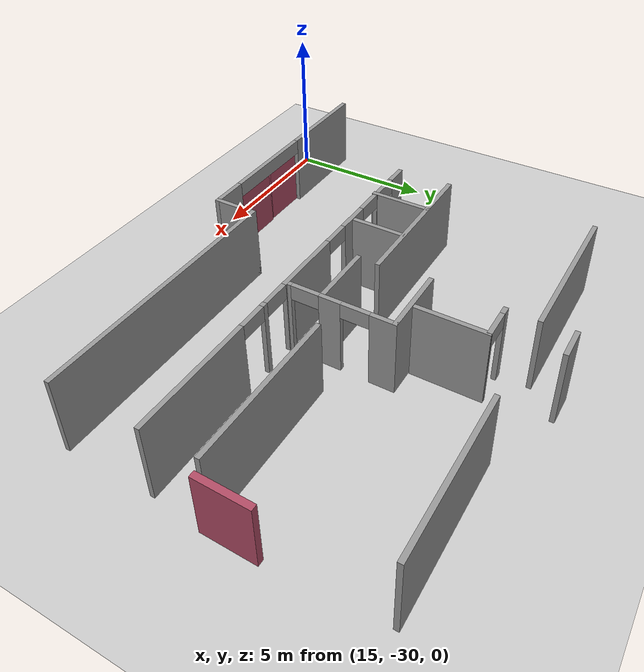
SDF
<sdf version="1.6">
 <world name="default">
  <model name="ground_plane">
   <static>1</static>
   <link name="link">
    <collision name="collision">
     <geometry><plane><normal>0 0 1</normal><size>100 100</size></plane></geometry>
     <surface><friction><ode><mu>100</mu><mu2>50</mu2></ode></friction></surface>
    </collision>
    <visual name="visual">
     <cast_shadows>0</cast_shadows>
     <geometry><plane><normal>0 0 1</normal><size>100 100</size></plane></geometry>
     <material>
      <script><uri>file://media/materials/scripts/gazebo.material</uri><name>Gazebo/Grey</name></script>
     </material>
    </visual>
   </link>
  </model>
  <model name="fin_se1f1.sdf">
   <pose>1.8125 -2.2901 0 0 -0 0</pose>
   <link name="Wall_165">
    <pose>22.2268 -22.214 0 0 -0 0</pose>
    <visual name="Wall_165_Visual_0">
     <pose>-6.13034 0 1.25 0 -0 0</pose>
     <geometry><box><size>0.739323 0.15 2.5</size></box></geometry>
     <material>
      <script><uri>file://media/materials/scripts/gazebo.material</uri><name>Gazebo/Grey</name></script>
      <ambient>1 1 1 1</ambient>
     </material>
     <meta><layer>0</layer></meta>
    </visual>
    <collision name="Wall_165_Collision_0">
     <geometry><box><size>0.739323 0.15 2.5</size></box></geometry>
     <pose>-6.13034 0 1.25 0 -0 0</pose>
    </collision>
    <visual name="Wall_165_Visual_1">
     <pose>-4.77767 0 1.25 0 -0 0</pose>
     <geometry><box><size>0.166019 0.15 2.5</size></box></geometry>
     <material>
      <script><uri>file://media/materials/scripts/gazebo.material</uri><name>Gazebo/Grey</name></script>
      <ambient>1 1 1 1</ambient>
     </material>
     <meta><layer>0</layer></meta>
    </visual>
    <collision name="Wall_165_Collision_1">
     <geometry><box><size>0.166019 0.15 2.5</size></box></geometry>
     <pose>-4.77767 0 1.25 0 -0 0</pose>
    </collision>
    <visual name="Wall_165_Visual_2">
     <pose>-3.22892 0 1.25 0 -0 0</pose>
     <geometry><box><size>1.13147 0.15 2.5</size></box></geometry>
     <material>
      <script><uri>file://media/materials/scripts/gazebo.material</uri><name>Gazebo/Grey</name></script>
      <ambient>1 1 1 1</ambient>
     </material>
     <meta><layer>0</layer></meta>
    </visual>
    <collision name="Wall_165_Collision_2">
     <geometry><box><size>1.13147 0.15 2.5</size></box></geometry>
     <pose>-3.22892 0 1.25 0 -0 0</pose>
    </collision>
    <visual name="Wall_165_Visual_3">
     <pose>-0.594044 0 1.25 0 -0 0</pose>
     <geometry><box><size>2.33828 0.15 2.5</size></box></geometry>
     <material>
      <script><uri>file://media/materials/scripts/gazebo.material</uri><name>Gazebo/Grey</name></script>
      <ambient>1 1 1 1</ambient>
     </material>
     <meta><layer>0</layer></meta>
    </visual>
    <collision name="Wall_165_Collision_3">
     <geometry><box><size>2.33828 0.15 2.5</size></box></geometry>
     <pose>-0.594044 0 1.25 0 -0 0</pose>
    </collision>
    <visual name="Wall_165_Visual_4">
     <pose>1.55811 0 1.25 0 -0 0</pose>
     <geometry><box><size>0.166019 0.15 2.5</size></box></geometry>
     <material>
      <script><uri>file://media/materials/scripts/gazebo.material</uri><name>Gazebo/Grey</name></script>
      <ambient>1 1 1 1</ambient>
     </material>
     <meta><layer>0</layer></meta>
    </visual>
    <collision name="Wall_165_Collision_4">
     <geometry><box><size>0.166019 0.15 2.5</size></box></geometry>
     <pose>1.55811 0 1.25 0 -0 0</pose>
    </collision>
    <visual name="Wall_165_Visual_5">
     <pose>4.52056 0 1.25 0 -0 0</pose>
     <geometry><box><size>3.95888 0.15 2.5</size></box></geometry>
     <material>
      <script><uri>file://media/materials/scripts/gazebo.material</uri><name>Gazebo/Grey</name></script>
      <ambient>1 1 1 1</ambient>
     </material>
     <meta><layer>0</layer></meta>
    </visual>
    <collision name="Wall_165_Collision_5">
     <geometry><box><size>3.95888 0.15 2.5</size></box></geometry>
     <pose>4.52056 0 1.25 0 -0 0</pose>
    </collision>
    <visual name="Wall_165_Visual_6">
     <pose>-5.31068 0 2.25 0 -0 0</pose>
     <geometry><box><size>0.9 0.15 0.5</size></box></geometry>
     <material>
      <script><uri>file://media/materials/scripts/gazebo.material</uri><name>Gazebo/Grey</name></script>
      <ambient>1 1 1 1</ambient>
     </material>
     <meta><layer>0</layer></meta>
    </visual>
    <collision name="Wall_165_Collision_6">
     <geometry><box><size>0.9 0.15 0.5</size></box></geometry>
     <pose>-5.31068 0 2.25 0 -0 0</pose>
    </collision>
    <visual name="Wall_165_Visual_7">
     <pose>-4.24466 0 2.25 0 -0 0</pose>
     <geometry><box><size>0.9 0.15 0.5</size></box></geometry>
     <material>
      <script><uri>file://media/materials/scripts/gazebo.material</uri><name>Gazebo/Grey</name></script>
      <ambient>1 1 1 1</ambient>
     </material>
     <meta><layer>0</layer></meta>
    </visual>
    <collision name="Wall_165_Collision_7">
     <geometry><box><size>0.9 0.15 0.5</size></box></geometry>
     <pose>-4.24466 0 2.25 0 -0 0</pose>
    </collision>
    <visual name="Wall_165_Visual_8">
     <pose>-2.21319 0 2.25 0 -0 0</pose>
     <geometry><box><size>0.9 0.15 0.5</size></box></geometry>
     <material>
      <script><uri>file://media/materials/scripts/gazebo.material</uri><name>Gazebo/Grey</name></script>
      <ambient>1 1 1 1</ambient>
     </material>
     <meta><layer>0</layer></meta>
    </visual>
    <collision name="Wall_165_Collision_8">
     <geometry><box><size>0.9 0.15 0.5</size></box></geometry>
     <pose>-2.21319 0 2.25 0 -0 0</pose>
    </collision>
    <visual name="Wall_165_Visual_9">
     <pose>1.0251 0 2.25 0 -0 0</pose>
     <geometry><box><size>0.9 0.15 0.5</size></box></geometry>
     <material>
      <script><uri>file://media/materials/scripts/gazebo.material</uri><name>Gazebo/Grey</name></script>
      <ambient>1 1 1 1</ambient>
     </material>
     <meta><layer>0</layer></meta>
    </visual>
    <collision name="Wall_165_Collision_9">
     <geometry><box><size>0.9 0.15 0.5</size></box></geometry>
     <pose>1.0251 0 2.25 0 -0 0</pose>
    </collision>
    <visual name="Wall_165_Visual_10">
     <pose>2.09112 0 2.25 0 -0 0</pose>
     <geometry><box><size>0.9 0.15 0.5</size></box></geometry>
     <material>
      <script><uri>file://media/materials/scripts/gazebo.material</uri><name>Gazebo/Grey</name></script>
      <ambient>1 1 1 1</ambient>
     </material>
     <meta><layer>0</layer></meta>
    </visual>
    <collision name="Wall_165_Collision_10">
     <geometry><box><size>0.9 0.15 0.5</size></box></geometry>
     <pose>2.09112 0 2.25 0 -0 0</pose>
    </collision>
   </link>
   <link name="Wall_175">
    <collision name="Wall_175_Collision">
     <geometry><box><size>2.25 0.15 2.5</size></box></geometry>
     <pose>0 0 1.25 0 -0 0</pose>
    </collision>
    <visual name="Wall_175_Visual">
     <pose>0 0 1.25 0 -0 0</pose>
     <geometry><box><size>2.25 0.15 2.5</size></box></geometry>
     <material>
      <script><uri>file://media/materials/scripts/gazebo.material</uri><name>Gazebo/Grey</name></script>
      <ambient>1 1 1 1</ambient>
     </material>
     <meta><layer>0</layer></meta>
    </visual>
    <pose>21.6382 -18.7732 0 0 -0 0</pose>
   </link>
   <link name="Wall_176">
    <pose>22.6882 -20.4482 0 0 0 -1.5708</pose>
    <visual name="Wall_176_Visual_0">
     <pose>-1.33489 0 1.25 0 -0 0</pose>
     <geometry><box><size>0.830212 0.15 2.5</size></box></geometry>
     <material>
      <script><uri>file://media/materials/scripts/gazebo.material</uri><name>Gazebo/Grey</name></script>
      <ambient>1 1 1 1</ambient>
     </material>
     <meta><layer>0</layer></meta>
    </visual>
    <collision name="Wall_176_Collision_0">
     <geometry><box><size>0.830212 0.15 2.5</size></box></geometry>
     <pose>-1.33489 0 1.25 0 -0 0</pose>
    </collision>
    <visual name="Wall_176_Visual_1">
     <pose>0.324698 0 1.25 0 -0 0</pose>
     <geometry><box><size>0.688972 0.15 2.5</size></box></geometry>
     <material>
      <script><uri>file://media/materials/scripts/gazebo.material</uri><name>Gazebo/Grey</name></script>
      <ambient>1 1 1 1</ambient>
     </material>
     <meta><layer>0</layer></meta>
    </visual>
    <collision name="Wall_176_Collision_1">
     <geometry><box><size>0.688972 0.15 2.5</size></box></geometry>
     <pose>0.324698 0 1.25 0 -0 0</pose>
    </collision>
    <visual name="Wall_176_Visual_2">
     <pose>1.65959 0 1.25 0 -0 0</pose>
     <geometry><box><size>0.180816 0.15 2.5</size></box></geometry>
     <material>
      <script><uri>file://media/materials/scripts/gazebo.material</uri><name>Gazebo/Grey</name></script>
      <ambient>1 1 1 1</ambient>
     </material>
     <meta><layer>0</layer></meta>
    </visual>
    <collision name="Wall_176_Collision_2">
     <geometry><box><size>0.180816 0.15 2.5</size></box></geometry>
     <pose>1.65959 0 1.25 0 -0 0</pose>
    </collision>
    <visual name="Wall_176_Visual_3">
     <pose>-0.469788 0 2.25 0 -0 0</pose>
     <geometry><box><size>0.9 0.15 0.5</size></box></geometry>
     <material>
      <script><uri>file://media/materials/scripts/gazebo.material</uri><name>Gazebo/Grey</name></script>
      <ambient>1 1 1 1</ambient>
     </material>
     <meta><layer>0</layer></meta>
    </visual>
    <collision name="Wall_176_Collision_3">
     <geometry><box><size>0.9 0.15 0.5</size></box></geometry>
     <pose>-0.469788 0 2.25 0 -0 0</pose>
    </collision>
    <visual name="Wall_176_Visual_4">
     <pose>1.11918 0 2.25 0 -0 0</pose>
     <geometry><box><size>0.9 0.15 0.5</size></box></geometry>
     <material>
      <script><uri>file://media/materials/scripts/gazebo.material</uri><name>Gazebo/Grey</name></script>
      <ambient>1 1 1 1</ambient>
     </material>
     <meta><layer>0</layer></meta>
    </visual>
    <collision name="Wall_176_Collision_4">
     <geometry><box><size>0.9 0.15 0.5</size></box></geometry>
     <pose>1.11918 0 2.25 0 -0 0</pose>
    </collision>
   </link>
   <link name="Wall_212">
    <collision name="Wall_212_Collision">
     <geometry><box><size>1 0.15 2.5</size></box></geometry>
     <pose>0 0 1.25 0 -0 0</pose>
    </collision>
    <visual name="Wall_212_Visual">
     <pose>0 0 1.25 0 -0 0</pose>
     <geometry><box><size>1 0.15 2.5</size></box></geometry>
     <material>
      <script><uri>file://media/materials/scripts/gazebo.material</uri><name>Gazebo/Grey</name></script>
      <ambient>1 1 1 1</ambient>
     </material>
     <meta><layer>0</layer></meta>
    </visual>
    <pose>21.0991 -14.557 0 0 -0 0</pose>
   </link>
   <link name="Wall_216">
    <collision name="Wall_216_Collision">
     <geometry><box><size>5 0.15 2.5</size></box></geometry>
     <pose>0 0 1.25 0 -0 0</pose>
    </collision>
    <visual name="Wall_216_Visual">
     <pose>0 0 1.25 0 -0 0</pose>
     <geometry><box><size>5 0.15 2.5</size></box></geometry>
     <material>
      <script><uri>file://media/materials/scripts/gazebo.material</uri><name>Gazebo/Grey</name></script>
      <ambient>1 1 1 1</ambient>
     </material>
     <meta><layer>0</layer></meta>
    </visual>
    <pose>26.1966 -15.5425 0 0 -0 0</pose>
   </link>
   <link name="Wall_218">
    <collision name="Wall_218_Collision">
     <geometry><box><size>5 0.15 2.5</size></box></geometry>
     <pose>0 0 1.25 0 -0 0</pose>
    </collision>
    <visual name="Wall_218_Visual">
     <pose>0 0 1.25 0 -0 0</pose>
     <geometry><box><size>5 0.15 2.5</size></box></geometry>
     <material>
      <script><uri>file://media/materials/scripts/gazebo.material</uri><name>Gazebo/Grey</name></script>
      <ambient>1 1 1 1</ambient>
     </material>
     <meta><layer>0</layer></meta>
    </visual>
    <pose>18.2316 -15.5224 0 0 -0 0</pose>
   </link>
   <link name="Wall_220">
    <collision name="Wall_220_Collision">
     <geometry><box><size>5 0.15 2.5</size></box></geometry>
     <pose>0 0 1.25 0 -0 0</pose>
    </collision>
    <visual name="Wall_220_Visual">
     <pose>0 0 1.25 0 -0 0</pose>
     <geometry><box><size>5 0.15 2.5</size></box></geometry>
     <material>
      <script><uri>file://media/materials/scripts/gazebo.material</uri><name>Gazebo/Grey</name></script>
      <ambient>1 1 1 1</ambient>
     </material>
     <meta><layer>0</layer></meta>
    </visual>
    <pose>18.2316 -20.3899 0 0 -0 0</pose>
   </link>
   <link name="Wall_222">
    <pose>21.2643 -16.508 0 0 -0 0</pose>
    <visual name="Wall_222_Visual_0">
     <pose>-0.48906 0 1.25 0 -0 0</pose>
     <geometry><box><size>0.27188 0.15 2.5</size></box></geometry>
     <material>
      <script><uri>file://media/materials/scripts/gazebo.material</uri><name>Gazebo/Grey</name></script>
      <ambient>1 1 1 1</ambient>
     </material>
     <meta><layer>0</layer></meta>
    </visual>
    <collision name="Wall_222_Collision_0">
     <geometry><box><size>0.27188 0.15 2.5</size></box></geometry>
     <pose>-0.48906 0 1.25 0 -0 0</pose>
    </collision>
    <visual name="Wall_222_Visual_1">
     <pose>0.58594 0 1.25 0 -0 0</pose>
     <geometry><box><size>0.07812 0.15 2.5</size></box></geometry>
     <material>
      <script><uri>file://media/materials/scripts/gazebo.material</uri><name>Gazebo/Grey</name></script>
      <ambient>1 1 1 1</ambient>
     </material>
     <meta><layer>0</layer></meta>
    </visual>
    <collision name="Wall_222_Collision_1">
     <geometry><box><size>0.07812 0.15 2.5</size></box></geometry>
     <pose>0.58594 0 1.25 0 -0 0</pose>
    </collision>
    <visual name="Wall_222_Visual_2">
     <pose>0.09688 0 2.25 0 -0 0</pose>
     <geometry><box><size>0.9 0.15 0.5</size></box></geometry>
     <material>
      <script><uri>file://media/materials/scripts/gazebo.material</uri><name>Gazebo/Grey</name></script>
      <ambient>1 1 1 1</ambient>
     </material>
     <meta><layer>0</layer></meta>
    </visual>
    <collision name="Wall_222_Collision_2">
     <geometry><box><size>0.9 0.15 0.5</size></box></geometry>
     <pose>0.09688 0 2.25 0 -0 0</pose>
    </collision>
   </link>
   <link name="Wall_223">
    <collision name="Wall_223_Collision">
     <geometry><box><size>2.25 0.15 2.5</size></box></geometry>
     <pose>0 0 1.25 0 -0 0</pose>
    </collision>
    <visual name="Wall_223_Visual">
     <pose>0 0 1.25 0 -0 0</pose>
     <geometry><box><size>2.25 0.15 2.5</size></box></geometry>
     <material>
      <script><uri>file://media/materials/scripts/gazebo.material</uri><name>Gazebo/Grey</name></script>
      <ambient>1 1 1 1</ambient>
     </material>
     <meta><layer>0</layer></meta>
    </visual>
    <pose>21.8143 -17.558 0 0 0 -1.5708</pose>
   </link>
   <link name="Wall_225">
    <collision name="Wall_225_Collision">
     <geometry><box><size>2 0.15 2.5</size></box></geometry>
     <pose>0 0 1.25 0 -0 0</pose>
    </collision>
    <visual name="Wall_225_Visual">
     <pose>0 0 1.25 0 -0 0</pose>
     <geometry><box><size>2 0.15 2.5</size></box></geometry>
     <material>
      <script><uri>file://media/materials/scripts/gazebo.material</uri><name>Gazebo/Grey</name></script>
      <ambient>1 1 1 1</ambient>
     </material>
     <meta><layer>0</layer></meta>
    </visual>
    <pose>21.6192 -21.0536 0 0 -0 0</pose>
   </link>
   <link name="Wall_227">
    <collision name="Wall_227_Collision">
     <geometry><box><size>2 0.15 2.5</size></box></geometry>
     <pose>0 0 1.25 0 -0 0</pose>
    </collision>
    <visual name="Wall_227_Visual">
     <pose>0 0 1.25 0 -0 0</pose>
     <geometry><box><size>2 0.15 2.5</size></box></geometry>
     <material>
      <script><uri>file://media/materials/scripts/gazebo.material</uri><name>Gazebo/Grey</name></script>
      <ambient>1 1 1 1</ambient>
     </material>
     <meta><layer>0</layer></meta>
    </visual>
    <pose>17.4358 -21.335 0 0 0 -1.5708</pose>
   </link>
   <link name="Wall_229">
    <collision name="Wall_229_Collision">
     <geometry><box><size>1.75 0.15 2.5</size></box></geometry>
     <pose>0 0 1.25 0 -0 0</pose>
    </collision>
    <visual name="Wall_229_Visual">
     <pose>0 0 1.25 0 -0 0</pose>
     <geometry><box><size>1.75 0.15 2.5</size></box></geometry>
     <material>
      <script><uri>file://media/materials/scripts/gazebo.material</uri><name>Gazebo/Grey</name></script>
      <ambient>1 1 1 1</ambient>
     </material>
     <meta><layer>0</layer></meta>
    </visual>
    <pose>19.065 -21.2502 0 0 0 -1.5708</pose>
   </link>
   <link name="Wall_231">
    <collision name="Wall_231_Collision">
     <geometry><box><size>5 0.15 2.5</size></box></geometry>
     <pose>0 0 1.25 0 -0 0</pose>
    </collision>
    <visual name="Wall_231_Visual">
     <pose>0 0 1.25 0 -0 0</pose>
     <geometry><box><size>5 0.15 2.5</size></box></geometry>
     <material>
      <script><uri>file://media/materials/scripts/gazebo.material</uri><name>Gazebo/Grey</name></script>
      <ambient>1 1 1 1</ambient>
     </material>
     <meta><layer>0</layer></meta>
    </visual>
    <pose>26.1966 -20.5106 0 0 -0 0</pose>
   </link>
   <link name="Wall_7">
    <pose>16.3754 -26.4254 0 0 -0 0</pose>
    <visual name="Wall_7_Visual_0">
     <pose>-2.28505 0 1.25 0 -0 0</pose>
     <geometry><box><size>3.4299 0.15 2.5</size></box></geometry>
     <material>
      <script><uri>file://media/materials/scripts/gazebo.material</uri><name>Gazebo/Grey</name></script>
      <ambient>1 1 1 1</ambient>
     </material>
     <meta><layer>0</layer></meta>
    </visual>
    <collision name="Wall_7_Collision_0">
     <geometry><box><size>3.4299 0.15 2.5</size></box></geometry>
     <pose>-2.28505 0 1.25 0 -0 0</pose>
    </collision>
    <visual name="Wall_7_Visual_1">
     <pose>3.39784 0 1.25 0 -0 0</pose>
     <geometry><box><size>1.20433 0.15 2.5</size></box></geometry>
     <material>
      <script><uri>file://media/materials/scripts/gazebo.material</uri><name>Gazebo/Grey</name></script>
      <ambient>1 1 1 1</ambient>
     </material>
     <meta><layer>0</layer></meta>
    </visual>
    <collision name="Wall_7_Collision_1">
     <geometry><box><size>1.20433 0.15 2.5</size></box></geometry>
     <pose>3.39784 0 1.25 0 -0 0</pose>
    </collision>
    <visual name="Wall_7_Visual_2">
     <pose>1.11279 0 2.25 0 -0 0</pose>
     <geometry><box><size>3.36577 0.15 0.5</size></box></geometry>
     <material>
      <script><uri>file://media/materials/scripts/gazebo.material</uri><name>Gazebo/Grey</name></script>
      <ambient>1 1 1 1</ambient>
     </material>
     <meta><layer>0</layer></meta>
    </visual>
    <collision name="Wall_7_Collision_2">
     <geometry><box><size>3.36577 0.15 0.5</size></box></geometry>
     <pose>1.11279 0 2.25 0 -0 0</pose>
    </collision>
   </link>
   <link name="Wall_8">
    <collision name="Wall_8_Collision">
     <geometry><box><size>1.5 0.15 2.5</size></box></geometry>
     <pose>0 0 1.25 0 -0 0</pose>
    </collision>
    <visual name="Wall_8_Visual">
     <pose>0 0 1.25 0 -0 0</pose>
     <geometry><box><size>1.5 0.15 2.5</size></box></geometry>
     <material>
      <script><uri>file://media/materials/scripts/gazebo.material</uri><name>Gazebo/Grey</name></script>
      <ambient>1 1 1 1</ambient>
     </material>
     <meta><layer>0</layer></meta>
    </visual>
    <pose>20.3004 -25.7504 0 0 -0 1.5708</pose>
   </link>
   <link name="Wall_9">
    <collision name="Wall_9_Collision">
     <geometry><box><size>8.5 0.15 2.5</size></box></geometry>
     <pose>0 0 1.25 0 -0 0</pose>
    </collision>
    <visual name="Wall_9_Visual">
     <pose>0 0 1.25 0 -0 0</pose>
     <geometry><box><size>8.5 0.15 2.5</size></box></geometry>
     <material>
      <script><uri>file://media/materials/scripts/gazebo.material</uri><name>Gazebo/Grey</name></script>
      <ambient>1 1 1 1</ambient>
     </material>
     <meta><layer>0</layer></meta>
    </visual>
    <pose>24.4754 -25.0754 0 0 -0 0</pose>
   </link>
   <static>1</static>
  </model>
  <model name="doorOutside_clone_8_clone_6">
   <link name="link">
    <pose>0.155539 -0.366282 0.216958 0 -0 0</pose>
    <inertial>
     <mass>2.13199</mass>
     <inertia>
      <ixx>0.452656</ixx>
      <ixy>0</ixy>
      <ixz>0</ixz>
      <iyy>0.796738</iyy>
      <iyz>0</iyz>
      <izz>0.699414</izz>
     </inertia>
    </inertial>
    <visual name="visual">
     <geometry><box><size>1.71368 0.198843 2.05986</size></box></geometry>
     <material>
      <script><name>Gazebo/Grey</name><uri>file://media/materials/scripts/gazebo.material</uri></script>
      <ambient>0.7 0.3 0.4 1</ambient>
      <diffuse>0.7 0.7 0.7 1</diffuse>
      <specular>0.01 0.01 0.01 1</specular>
      <emissive>0 0 0 1</emissive>
      <shader type="vertex"><normal_map>__default__</normal_map></shader>
      <lighting>0</lighting>
     </material>
    </visual>
    <collision name="collision">
     <geometry><box><size>1.71368 0.198843 2.05986</size></box></geometry>
     <surface>
      <friction>
       <ode><mu>1</mu><mu2>1</mu2><fdir1>0 0 0</fdir1><slip1>0</slip1><slip2>0</slip2></ode>
       <torsional>
        <coefficient>1</coefficient>
        <patch_radius>0</patch_radius>
        <surface_radius>0</surface_radius>
        <use_patch_radius>1</use_patch_radius>
        <ode><slip>0</slip></ode>
       </torsional>
      </friction>
      <bounce><restitution_coefficient>0</restitution_coefficient><threshold>1e+06</threshold></bounce>
      <contact>
       <collide_without_contact>0</collide_without_contact>
       <collide_without_contact_bitmask>1</collide_without_contact_bitmask>
       <collide_bitmask>1</collide_bitmask>
       <ode>
        <soft_cfm>0</soft_cfm>
        <soft_erp>0.2</soft_erp>
        <kp>1e+13</kp>
        <kd>1</kd>
        <max_vel>0.01</max_vel>
        <min_depth>0</min_depth>
       </ode>
       <bullet>
        <split_impulse>1</split_impulse>
        <split_impulse_penetration_threshold>-0.01</split_impulse_penetration_threshold>
        <soft_cfm>0</soft_cfm>
        <soft_erp>0.2</soft_erp>
        <kp>1e+13</kp>
        <kd>1</kd>
       </bullet>
      </contact>
     </surface>
    </collision>
   </link>
   <static>1</static>
   <pose>30.2806 -22.2057 0.812962 1e-06 -5e-06 1.5574</pose>
  </model>
  <model name="doorOutside_clone_8_clone_7">
   <link name="link">
    <pose>0.155539 -0.366282 0.216958 0 -0 0</pose>
    <inertial>
     <mass>2.13199</mass>
     <inertia>
      <ixx>0.452656</ixx>
      <ixy>0</ixy>
      <ixz>0</ixz>
      <iyy>0.796738</iyy>
      <iyz>0</iyz>
      <izz>0.699414</izz>
     </inertia>
    </inertial>
    <visual name="visual">
     <geometry><box><size>1.71368 0.198843 2.05986</size></box></geometry>
     <material>
      <script><name>Gazebo/Grey</name><uri>file://media/materials/scripts/gazebo.material</uri></script>
      <ambient>0.7 0.3 0.4 1</ambient>
      <diffuse>0.7 0.7 0.7 1</diffuse>
      <specular>0.01 0.01 0.01 1</specular>
      <emissive>0 0 0 1</emissive>
      <shader type="vertex"><normal_map>__default__</normal_map></shader>
      <lighting>0</lighting>
     </material>
    </visual>
    <collision name="collision">
     <geometry><box><size>1.71368 0.198843 2.05986</size></box></geometry>
     <surface>
      <friction>
       <ode><mu>1</mu><mu2>1</mu2><fdir1>0 0 0</fdir1><slip1>0</slip1><slip2>0</slip2></ode>
       <torsional>
        <coefficient>1</coefficient>
        <patch_radius>0</patch_radius>
        <surface_radius>0</surface_radius>
        <use_patch_radius>1</use_patch_radius>
        <ode><slip>0</slip></ode>
       </torsional>
      </friction>
      <bounce><restitution_coefficient>0</restitution_coefficient><threshold>1e+06</threshold></bounce>
      <contact>
       <collide_without_contact>0</collide_without_contact>
       <collide_without_contact_bitmask>1</collide_without_contact_bitmask>
       <collide_bitmask>1</collide_bitmask>
       <ode>
        <soft_cfm>0</soft_cfm>
        <soft_erp>0.2</soft_erp>
        <kp>1e+13</kp>
        <kd>1</kd>
        <max_vel>0.01</max_vel>
        <min_depth>0</min_depth>
       </ode>
       <bullet>
        <split_impulse>1</split_impulse>
        <split_impulse_penetration_threshold>-0.01</split_impulse_penetration_threshold>
        <soft_cfm>0</soft_cfm>
        <soft_erp>0.2</soft_erp>
        <kp>1e+13</kp>
        <kd>1</kd>
       </bullet>
      </contact>
     </surface>
    </collision>
   </link>
   <static>1</static>
   <pose>19.9564 -28.4935 0.824588 0.025519 -5e-06 0</pose>
  </model>
  <model name="doorOutside_clone_8_clone_7_clone">
   <link name="link">
    <pose>0.155539 -0.366282 0.216958 0 -0 0</pose>
    <inertial>
     <mass>2.13199</mass>
     <inertia>
      <ixx>0.452656</ixx>
      <ixy>0</ixy>
      <ixz>0</ixz>
      <iyy>0.796738</iyy>
      <iyz>0</iyz>
      <izz>0.699414</izz>
     </inertia>
    </inertial>
    <visual name="visual">
     <geometry><box><size>1.71368 0.198843 2.05986</size></box></geometry>
     <material>
      <script><name>Gazebo/Grey</name><uri>file://media/materials/scripts/gazebo.material</uri></script>
      <ambient>0.7 0.3 0.4 1</ambient>
      <diffuse>0.7 0.7 0.7 1</diffuse>
      <specular>0.01 0.01 0.01 1</specular>
      <emissive>0 0 0 1</emissive>
      <shader type="vertex"><normal_map>__default__</normal_map></shader>
      <lighting>0</lighting>
     </material>
    </visual>
    <collision name="collision">
     <geometry><box><size>1.71368 0.198843 2.05986</size></box></geometry>
     <surface>
      <friction>
       <ode><mu>1</mu><mu2>1</mu2><fdir1>0 0 0</fdir1><slip1>0</slip1><slip2>0</slip2></ode>
       <torsional>
        <coefficient>1</coefficient>
        <patch_radius>0</patch_radius>
        <surface_radius>0</surface_radius>
        <use_patch_radius>1</use_patch_radius>
        <ode><slip>0</slip></ode>
       </torsional>
      </friction>
      <bounce><restitution_coefficient>0</restitution_coefficient><threshold>1e+06</threshold></bounce>
      <contact>
       <collide_without_contact>0</collide_without_contact>
       <collide_without_contact_bitmask>1</collide_without_contact_bitmask>
       <collide_bitmask>1</collide_bitmask>
       <ode>
        <soft_cfm>0</soft_cfm>
        <soft_erp>0.2</soft_erp>
        <kp>1e+13</kp>
        <kd>1</kd>
        <max_vel>0.01</max_vel>
        <min_depth>0</min_depth>
       </ode>
       <bullet>
        <split_impulse>1</split_impulse>
        <split_impulse_penetration_threshold>-0.01</split_impulse_penetration_threshold>
        <soft_cfm>0</soft_cfm>
        <soft_erp>0.2</soft_erp>
        <kp>1e+13</kp>
        <kd>1</kd>
       </bullet>
      </contact>
     </surface>
    </collision>
   </link>
   <static>1</static>
   <pose>18.1556 -28.5236 0.812972 1e-06 -1e-06 0</pose>
  </model>
 </world>
</sdf>
